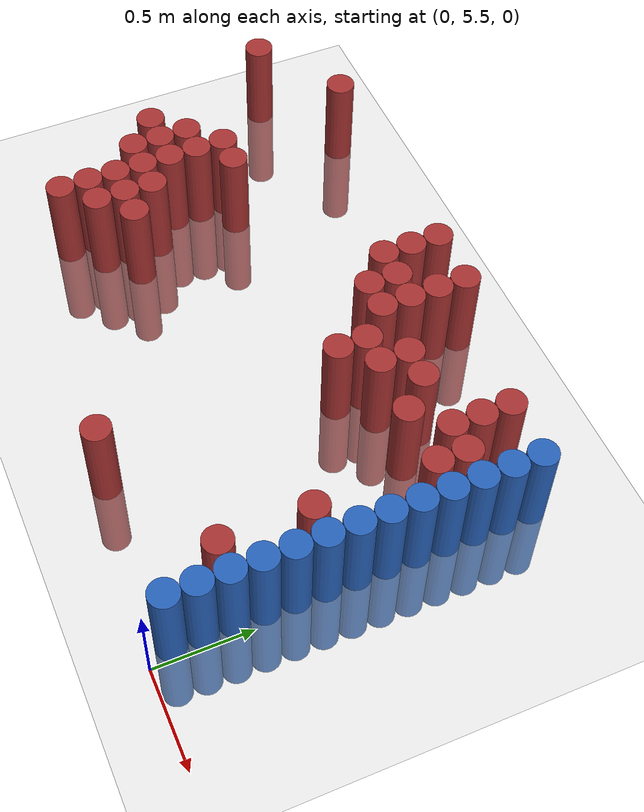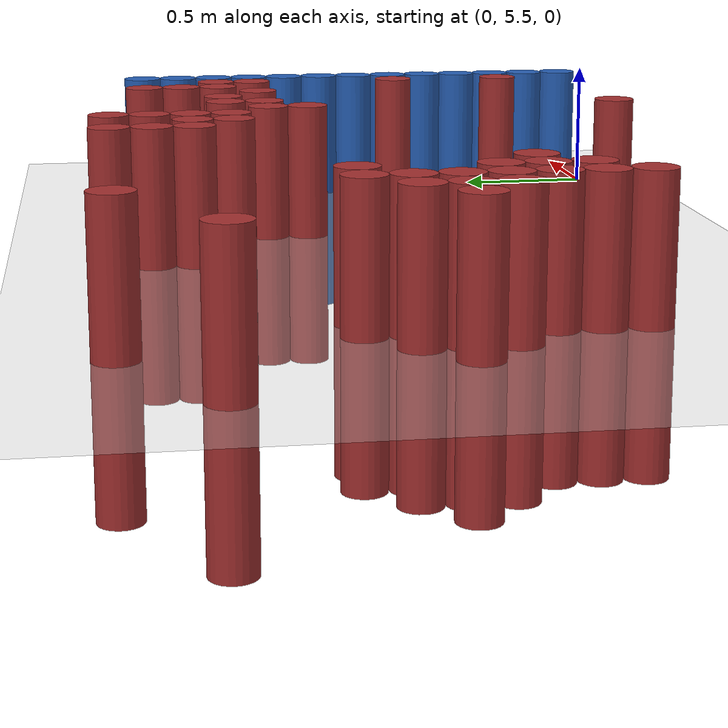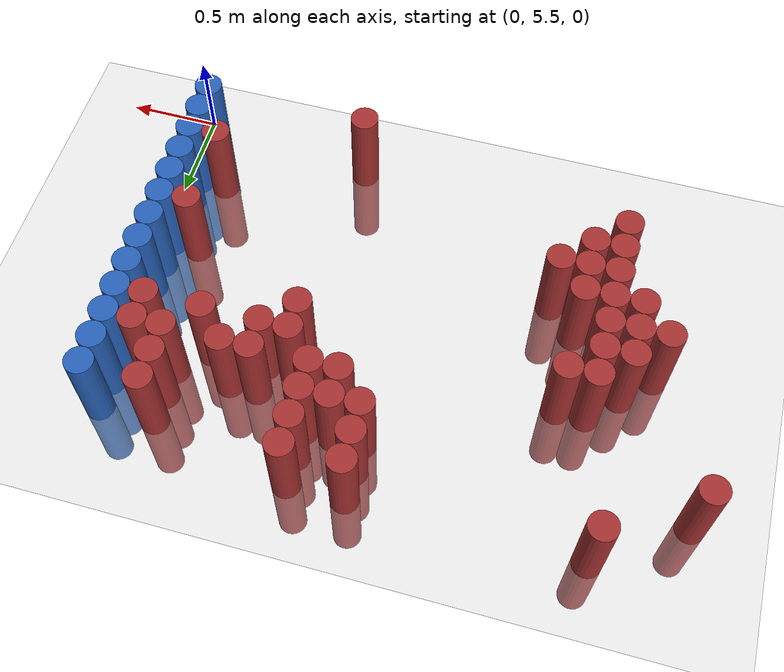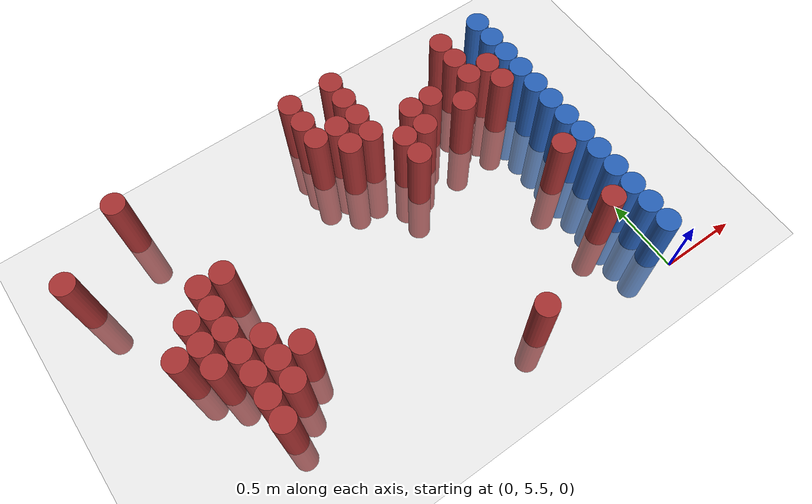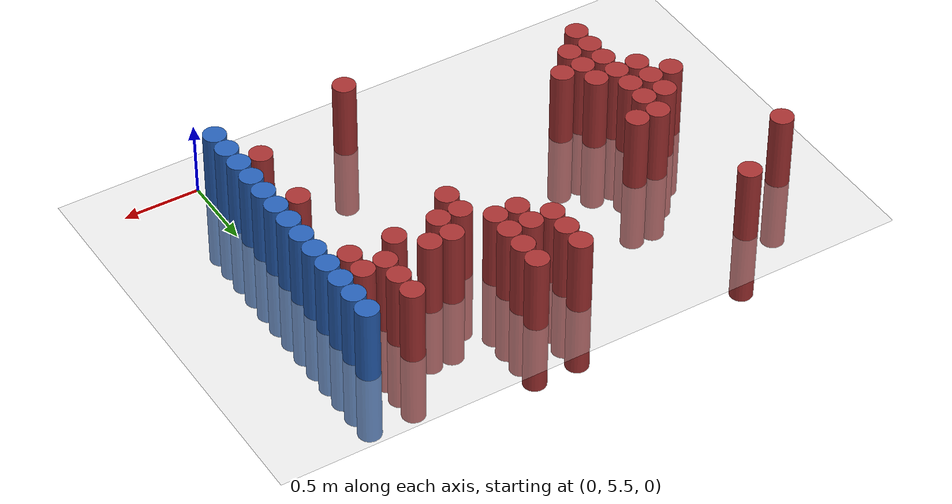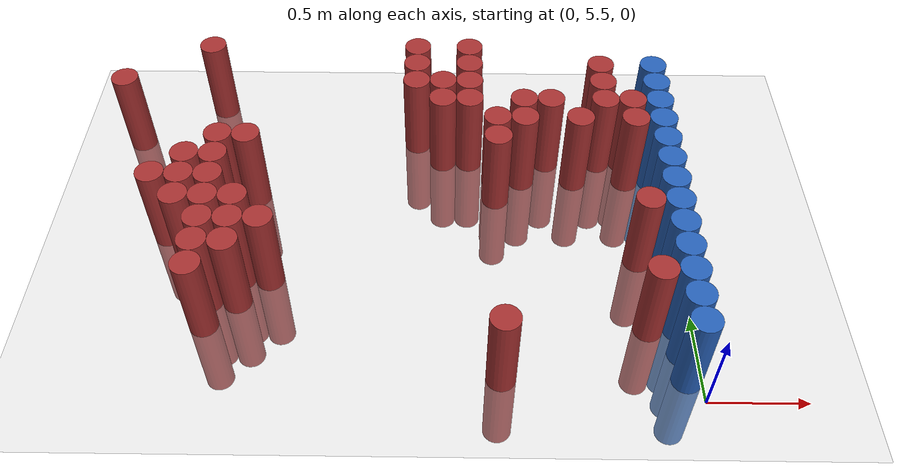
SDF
<sdf version="1.6">
 <world name="default">
  <model name="ground_plane">
   <static>1</static>
   <link name="link">
    <collision name="collision">
     <geometry><plane><normal>0 0 1</normal><size>100 100</size></plane></geometry>
     <surface><friction><ode><mu>100</mu><mu2>50</mu2></ode></friction></surface>
    </collision>
    <visual name="visual">
     <cast_shadows>0</cast_shadows>
     <geometry><plane><normal>0 0 1</normal><size>100 100</size></plane></geometry>
     <material>
      <script><uri>file://media/materials/scripts/gazebo.material</uri><name>Gazebo/Grey</name></script>
     </material>
    </visual>
   </link>
  </model>
  <model name="unit_cylinder_155">
   <static>1</static>
   <pose>-3.075000 7.275000 0.000000 0.000000 0.000000 0.000000</pose>
   <link name="link">
    <inertial>
     <mass>1</mass>
     <inertia><ixx>0.145833</ixx><ixy>0</ixy><ixz>0</ixz><iyy>0.145833</iyy><iyz>0</iyz><izz>0.125</izz></inertia>
    </inertial>
    <collision name="collision">
     <geometry><cylinder><radius>0.075000</radius><length>1</length></cylinder></geometry>
    </collision>
    <visual name="visual">
     <geometry><cylinder><radius>0.075000</radius><length>1</length></cylinder></geometry>
     <material>
      <ambient>0.648000 0.192000 0.192000 1</ambient>
      <diffuse>0.648000 0.192000 0.192000 1</diffuse>
     </material>
     <material>
      <script><name>Gazebo/Grey</name><uri>file://media/materials/scripts/gazebo.material</uri></script>
     </material>
    </visual>
   </link>
  </model>
  <model name="unit_cylinder_159">
   <static>1</static>
   <pose>-2.775000 6.525000 0.000000 0.000000 0.000000 0.000000</pose>
   <link name="link">
    <inertial>
     <mass>1</mass>
     <inertia><ixx>0.145833</ixx><ixy>0</ixy><ixz>0</ixz><iyy>0.145833</iyy><iyz>0</iyz><izz>0.125</izz></inertia>
    </inertial>
    <collision name="collision">
     <geometry><cylinder><radius>0.075000</radius><length>1</length></cylinder></geometry>
    </collision>
    <visual name="visual">
     <geometry><cylinder><radius>0.075000</radius><length>1</length></cylinder></geometry>
     <material>
      <ambient>0.648000 0.192000 0.192000 1</ambient>
      <diffuse>0.648000 0.192000 0.192000 1</diffuse>
     </material>
     <material>
      <script><name>Gazebo/Grey</name><uri>file://media/materials/scripts/gazebo.material</uri></script>
     </material>
    </visual>
   </link>
  </model>
  <model name="unit_cylinder_164">
   <static>1</static>
   <pose>-2.625000 6.375000 0.000000 0.000000 0.000000 0.000000</pose>
   <link name="link">
    <inertial>
     <mass>1</mass>
     <inertia><ixx>0.145833</ixx><ixy>0</ixy><ixz>0</ixz><iyy>0.145833</iyy><iyz>0</iyz><izz>0.125</izz></inertia>
    </inertial>
    <collision name="collision">
     <geometry><cylinder><radius>0.075000</radius><length>1</length></cylinder></geometry>
    </collision>
    <visual name="visual">
     <geometry><cylinder><radius>0.075000</radius><length>1</length></cylinder></geometry>
     <material>
      <ambient>0.648000 0.192000 0.192000 1</ambient>
      <diffuse>0.648000 0.192000 0.192000 1</diffuse>
     </material>
     <material>
      <script><name>Gazebo/Grey</name><uri>file://media/materials/scripts/gazebo.material</uri></script>
     </material>
    </visual>
   </link>
  </model>
  <model name="unit_cylinder_165">
   <static>1</static>
   <pose>-2.625000 6.525000 0.000000 0.000000 0.000000 0.000000</pose>
   <link name="link">
    <inertial>
     <mass>1</mass>
     <inertia><ixx>0.145833</ixx><ixy>0</ixy><ixz>0</ixz><iyy>0.145833</iyy><iyz>0</iyz><izz>0.125</izz></inertia>
    </inertial>
    <collision name="collision">
     <geometry><cylinder><radius>0.075000</radius><length>1</length></cylinder></geometry>
    </collision>
    <visual name="visual">
     <geometry><cylinder><radius>0.075000</radius><length>1</length></cylinder></geometry>
     <material>
      <ambient>0.648000 0.192000 0.192000 1</ambient>
      <diffuse>0.648000 0.192000 0.192000 1</diffuse>
     </material>
     <material>
      <script><name>Gazebo/Grey</name><uri>file://media/materials/scripts/gazebo.material</uri></script>
     </material>
    </visual>
   </link>
  </model>
  <model name="unit_cylinder_166">
   <static>1</static>
   <pose>-2.625000 6.675000 0.000000 0.000000 0.000000 0.000000</pose>
   <link name="link">
    <inertial>
     <mass>1</mass>
     <inertia><ixx>0.145833</ixx><ixy>0</ixy><ixz>0</ixz><iyy>0.145833</iyy><iyz>0</iyz><izz>0.125</izz></inertia>
    </inertial>
    <collision name="collision">
     <geometry><cylinder><radius>0.075000</radius><length>1</length></cylinder></geometry>
    </collision>
    <visual name="visual">
     <geometry><cylinder><radius>0.075000</radius><length>1</length></cylinder></geometry>
     <material>
      <ambient>0.648000 0.192000 0.192000 1</ambient>
      <diffuse>0.648000 0.192000 0.192000 1</diffuse>
     </material>
     <material>
      <script><name>Gazebo/Grey</name><uri>file://media/materials/scripts/gazebo.material</uri></script>
     </material>
    </visual>
   </link>
  </model>
  <model name="unit_cylinder_167">
   <static>1</static>
   <pose>-2.625000 7.575000 0.000000 0.000000 0.000000 0.000000</pose>
   <link name="link">
    <inertial>
     <mass>1</mass>
     <inertia><ixx>0.145833</ixx><ixy>0</ixy><ixz>0</ixz><iyy>0.145833</iyy><iyz>0</iyz><izz>0.125</izz></inertia>
    </inertial>
    <collision name="collision">
     <geometry><cylinder><radius>0.075000</radius><length>1</length></cylinder></geometry>
    </collision>
    <visual name="visual">
     <geometry><cylinder><radius>0.075000</radius><length>1</length></cylinder></geometry>
     <material>
      <ambient>0.648000 0.192000 0.192000 1</ambient>
      <diffuse>0.648000 0.192000 0.192000 1</diffuse>
     </material>
     <material>
      <script><name>Gazebo/Grey</name><uri>file://media/materials/scripts/gazebo.material</uri></script>
     </material>
    </visual>
   </link>
  </model>
  <model name="unit_cylinder_170">
   <static>1</static>
   <pose>-2.475000 5.925000 0.000000 0.000000 0.000000 0.000000</pose>
   <link name="link">
    <inertial>
     <mass>1</mass>
     <inertia><ixx>0.145833</ixx><ixy>0</ixy><ixz>0</ixz><iyy>0.145833</iyy><iyz>0</iyz><izz>0.125</izz></inertia>
    </inertial>
    <collision name="collision">
     <geometry><cylinder><radius>0.075000</radius><length>1</length></cylinder></geometry>
    </collision>
    <visual name="visual">
     <geometry><cylinder><radius>0.075000</radius><length>1</length></cylinder></geometry>
     <material>
      <ambient>0.648000 0.192000 0.192000 1</ambient>
      <diffuse>0.648000 0.192000 0.192000 1</diffuse>
     </material>
     <material>
      <script><name>Gazebo/Grey</name><uri>file://media/materials/scripts/gazebo.material</uri></script>
     </material>
    </visual>
   </link>
  </model>
  <model name="unit_cylinder_171">
   <static>1</static>
   <pose>-2.475000 6.075000 0.000000 0.000000 0.000000 0.000000</pose>
   <link name="link">
    <inertial>
     <mass>1</mass>
     <inertia><ixx>0.145833</ixx><ixy>0</ixy><ixz>0</ixz><iyy>0.145833</iyy><iyz>0</iyz><izz>0.125</izz></inertia>
    </inertial>
    <collision name="collision">
     <geometry><cylinder><radius>0.075000</radius><length>1</length></cylinder></geometry>
    </collision>
    <visual name="visual">
     <geometry><cylinder><radius>0.075000</radius><length>1</length></cylinder></geometry>
     <material>
      <ambient>0.648000 0.192000 0.192000 1</ambient>
      <diffuse>0.648000 0.192000 0.192000 1</diffuse>
     </material>
     <material>
      <script><name>Gazebo/Grey</name><uri>file://media/materials/scripts/gazebo.material</uri></script>
     </material>
    </visual>
   </link>
  </model>
  <model name="unit_cylinder_172">
   <static>1</static>
   <pose>-2.475000 6.225000 0.000000 0.000000 0.000000 0.000000</pose>
   <link name="link">
    <inertial>
     <mass>1</mass>
     <inertia><ixx>0.145833</ixx><ixy>0</ixy><ixz>0</ixz><iyy>0.145833</iyy><iyz>0</iyz><izz>0.125</izz></inertia>
    </inertial>
    <collision name="collision">
     <geometry><cylinder><radius>0.075000</radius><length>1</length></cylinder></geometry>
    </collision>
    <visual name="visual">
     <geometry><cylinder><radius>0.075000</radius><length>1</length></cylinder></geometry>
     <material>
      <ambient>0.648000 0.192000 0.192000 1</ambient>
      <diffuse>0.648000 0.192000 0.192000 1</diffuse>
     </material>
     <material>
      <script><name>Gazebo/Grey</name><uri>file://media/materials/scripts/gazebo.material</uri></script>
     </material>
    </visual>
   </link>
  </model>
  <model name="unit_cylinder_173">
   <static>1</static>
   <pose>-2.475000 6.375000 0.000000 0.000000 0.000000 0.000000</pose>
   <link name="link">
    <inertial>
     <mass>1</mass>
     <inertia><ixx>0.145833</ixx><ixy>0</ixy><ixz>0</ixz><iyy>0.145833</iyy><iyz>0</iyz><izz>0.125</izz></inertia>
    </inertial>
    <collision name="collision">
     <geometry><cylinder><radius>0.075000</radius><length>1</length></cylinder></geometry>
    </collision>
    <visual name="visual">
     <geometry><cylinder><radius>0.075000</radius><length>1</length></cylinder></geometry>
     <material>
      <ambient>0.648000 0.192000 0.192000 1</ambient>
      <diffuse>0.648000 0.192000 0.192000 1</diffuse>
     </material>
     <material>
      <script><name>Gazebo/Grey</name><uri>file://media/materials/scripts/gazebo.material</uri></script>
     </material>
    </visual>
   </link>
  </model>
  <model name="unit_cylinder_174">
   <static>1</static>
   <pose>-2.475000 6.525000 0.000000 0.000000 0.000000 0.000000</pose>
   <link name="link">
    <inertial>
     <mass>1</mass>
     <inertia><ixx>0.145833</ixx><ixy>0</ixy><ixz>0</ixz><iyy>0.145833</iyy><iyz>0</iyz><izz>0.125</izz></inertia>
    </inertial>
    <collision name="collision">
     <geometry><cylinder><radius>0.075000</radius><length>1</length></cylinder></geometry>
    </collision>
    <visual name="visual">
     <geometry><cylinder><radius>0.075000</radius><length>1</length></cylinder></geometry>
     <material>
      <ambient>0.648000 0.192000 0.192000 1</ambient>
      <diffuse>0.648000 0.192000 0.192000 1</diffuse>
     </material>
     <material>
      <script><name>Gazebo/Grey</name><uri>file://media/materials/scripts/gazebo.material</uri></script>
     </material>
    </visual>
   </link>
  </model>
  <model name="unit_cylinder_175">
   <static>1</static>
   <pose>-2.475000 6.675000 0.000000 0.000000 0.000000 0.000000</pose>
   <link name="link">
    <inertial>
     <mass>1</mass>
     <inertia><ixx>0.145833</ixx><ixy>0</ixy><ixz>0</ixz><iyy>0.145833</iyy><iyz>0</iyz><izz>0.125</izz></inertia>
    </inertial>
    <collision name="collision">
     <geometry><cylinder><radius>0.075000</radius><length>1</length></cylinder></geometry>
    </collision>
    <visual name="visual">
     <geometry><cylinder><radius>0.075000</radius><length>1</length></cylinder></geometry>
     <material>
      <ambient>0.648000 0.192000 0.192000 1</ambient>
      <diffuse>0.648000 0.192000 0.192000 1</diffuse>
     </material>
     <material>
      <script><name>Gazebo/Grey</name><uri>file://media/materials/scripts/gazebo.material</uri></script>
     </material>
    </visual>
   </link>
  </model>
  <model name="unit_cylinder_176">
   <static>1</static>
   <pose>-2.475000 6.825000 0.000000 0.000000 0.000000 0.000000</pose>
   <link name="link">
    <inertial>
     <mass>1</mass>
     <inertia><ixx>0.145833</ixx><ixy>0</ixy><ixz>0</ixz><iyy>0.145833</iyy><iyz>0</iyz><izz>0.125</izz></inertia>
    </inertial>
    <collision name="collision">
     <geometry><cylinder><radius>0.075000</radius><length>1</length></cylinder></geometry>
    </collision>
    <visual name="visual">
     <geometry><cylinder><radius>0.075000</radius><length>1</length></cylinder></geometry>
     <material>
      <ambient>0.648000 0.192000 0.192000 1</ambient>
      <diffuse>0.648000 0.192000 0.192000 1</diffuse>
     </material>
     <material>
      <script><name>Gazebo/Grey</name><uri>file://media/materials/scripts/gazebo.material</uri></script>
     </material>
    </visual>
   </link>
  </model>
  <model name="unit_cylinder_177">
   <static>1</static>
   <pose>-2.325000 6.075000 0.000000 0.000000 0.000000 0.000000</pose>
   <link name="link">
    <inertial>
     <mass>1</mass>
     <inertia><ixx>0.145833</ixx><ixy>0</ixy><ixz>0</ixz><iyy>0.145833</iyy><iyz>0</iyz><izz>0.125</izz></inertia>
    </inertial>
    <collision name="collision">
     <geometry><cylinder><radius>0.075000</radius><length>1</length></cylinder></geometry>
    </collision>
    <visual name="visual">
     <geometry><cylinder><radius>0.075000</radius><length>1</length></cylinder></geometry>
     <material>
      <ambient>0.648000 0.192000 0.192000 1</ambient>
      <diffuse>0.648000 0.192000 0.192000 1</diffuse>
     </material>
     <material>
      <script><name>Gazebo/Grey</name><uri>file://media/materials/scripts/gazebo.material</uri></script>
     </material>
    </visual>
   </link>
  </model>
  <model name="unit_cylinder_178">
   <static>1</static>
   <pose>-2.325000 6.225000 0.000000 0.000000 0.000000 0.000000</pose>
   <link name="link">
    <inertial>
     <mass>1</mass>
     <inertia><ixx>0.145833</ixx><ixy>0</ixy><ixz>0</ixz><iyy>0.145833</iyy><iyz>0</iyz><izz>0.125</izz></inertia>
    </inertial>
    <collision name="collision">
     <geometry><cylinder><radius>0.075000</radius><length>1</length></cylinder></geometry>
    </collision>
    <visual name="visual">
     <geometry><cylinder><radius>0.075000</radius><length>1</length></cylinder></geometry>
     <material>
      <ambient>0.648000 0.192000 0.192000 1</ambient>
      <diffuse>0.648000 0.192000 0.192000 1</diffuse>
     </material>
     <material>
      <script><name>Gazebo/Grey</name><uri>file://media/materials/scripts/gazebo.material</uri></script>
     </material>
    </visual>
   </link>
  </model>
  <model name="unit_cylinder_179">
   <static>1</static>
   <pose>-2.325000 6.375000 0.000000 0.000000 0.000000 0.000000</pose>
   <link name="link">
    <inertial>
     <mass>1</mass>
     <inertia><ixx>0.145833</ixx><ixy>0</ixy><ixz>0</ixz><iyy>0.145833</iyy><iyz>0</iyz><izz>0.125</izz></inertia>
    </inertial>
    <collision name="collision">
     <geometry><cylinder><radius>0.075000</radius><length>1</length></cylinder></geometry>
    </collision>
    <visual name="visual">
     <geometry><cylinder><radius>0.075000</radius><length>1</length></cylinder></geometry>
     <material>
      <ambient>0.648000 0.192000 0.192000 1</ambient>
      <diffuse>0.648000 0.192000 0.192000 1</diffuse>
     </material>
     <material>
      <script><name>Gazebo/Grey</name><uri>file://media/materials/scripts/gazebo.material</uri></script>
     </material>
    </visual>
   </link>
  </model>
  <model name="unit_cylinder_180">
   <static>1</static>
   <pose>-2.325000 6.825000 0.000000 0.000000 0.000000 0.000000</pose>
   <link name="link">
    <inertial>
     <mass>1</mass>
     <inertia><ixx>0.145833</ixx><ixy>0</ixy><ixz>0</ixz><iyy>0.145833</iyy><iyz>0</iyz><izz>0.125</izz></inertia>
    </inertial>
    <collision name="collision">
     <geometry><cylinder><radius>0.075000</radius><length>1</length></cylinder></geometry>
    </collision>
    <visual name="visual">
     <geometry><cylinder><radius>0.075000</radius><length>1</length></cylinder></geometry>
     <material>
      <ambient>0.648000 0.192000 0.192000 1</ambient>
      <diffuse>0.648000 0.192000 0.192000 1</diffuse>
     </material>
     <material>
      <script><name>Gazebo/Grey</name><uri>file://media/materials/scripts/gazebo.material</uri></script>
     </material>
    </visual>
   </link>
  </model>
  <model name="unit_cylinder_181">
   <static>1</static>
   <pose>-2.175000 6.225000 0.000000 0.000000 0.000000 0.000000</pose>
   <link name="link">
    <inertial>
     <mass>1</mass>
     <inertia><ixx>0.145833</ixx><ixy>0</ixy><ixz>0</ixz><iyy>0.145833</iyy><iyz>0</iyz><izz>0.125</izz></inertia>
    </inertial>
    <collision name="collision">
     <geometry><cylinder><radius>0.075000</radius><length>1</length></cylinder></geometry>
    </collision>
    <visual name="visual">
     <geometry><cylinder><radius>0.075000</radius><length>1</length></cylinder></geometry>
     <material>
      <ambient>0.648000 0.192000 0.192000 1</ambient>
      <diffuse>0.648000 0.192000 0.192000 1</diffuse>
     </material>
     <material>
      <script><name>Gazebo/Grey</name><uri>file://media/materials/scripts/gazebo.material</uri></script>
     </material>
    </visual>
   </link>
  </model>
  <model name="unit_cylinder_182">
   <static>1</static>
   <pose>-1.425000 7.275000 0.000000 0.000000 0.000000 0.000000</pose>
   <link name="link">
    <inertial>
     <mass>1</mass>
     <inertia><ixx>0.145833</ixx><ixy>0</ixy><ixz>0</ixz><iyy>0.145833</iyy><iyz>0</iyz><izz>0.125</izz></inertia>
    </inertial>
    <collision name="collision">
     <geometry><cylinder><radius>0.075000</radius><length>1</length></cylinder></geometry>
    </collision>
    <visual name="visual">
     <geometry><cylinder><radius>0.075000</radius><length>1</length></cylinder></geometry>
     <material>
      <ambient>0.648000 0.192000 0.192000 1</ambient>
      <diffuse>0.648000 0.192000 0.192000 1</diffuse>
     </material>
     <material>
      <script><name>Gazebo/Grey</name><uri>file://media/materials/scripts/gazebo.material</uri></script>
     </material>
    </visual>
   </link>
  </model>
  <model name="unit_cylinder_183">
   <static>1</static>
   <pose>-1.425000 7.425000 0.000000 0.000000 0.000000 0.000000</pose>
   <link name="link">
    <inertial>
     <mass>1</mass>
     <inertia><ixx>0.145833</ixx><ixy>0</ixy><ixz>0</ixz><iyy>0.145833</iyy><iyz>0</iyz><izz>0.125</izz></inertia>
    </inertial>
    <collision name="collision">
     <geometry><cylinder><radius>0.075000</radius><length>1</length></cylinder></geometry>
    </collision>
    <visual name="visual">
     <geometry><cylinder><radius>0.075000</radius><length>1</length></cylinder></geometry>
     <material>
      <ambient>0.648000 0.192000 0.192000 1</ambient>
      <diffuse>0.648000 0.192000 0.192000 1</diffuse>
     </material>
     <material>
      <script><name>Gazebo/Grey</name><uri>file://media/materials/scripts/gazebo.material</uri></script>
     </material>
    </visual>
   </link>
  </model>
  <model name="unit_cylinder_184">
   <static>1</static>
   <pose>-1.425000 7.575000 0.000000 0.000000 0.000000 0.000000</pose>
   <link name="link">
    <inertial>
     <mass>1</mass>
     <inertia><ixx>0.145833</ixx><ixy>0</ixy><ixz>0</ixz><iyy>0.145833</iyy><iyz>0</iyz><izz>0.125</izz></inertia>
    </inertial>
    <collision name="collision">
     <geometry><cylinder><radius>0.075000</radius><length>1</length></cylinder></geometry>
    </collision>
    <visual name="visual">
     <geometry><cylinder><radius>0.075000</radius><length>1</length></cylinder></geometry>
     <material>
      <ambient>0.648000 0.192000 0.192000 1</ambient>
      <diffuse>0.648000 0.192000 0.192000 1</diffuse>
     </material>
     <material>
      <script><name>Gazebo/Grey</name><uri>file://media/materials/scripts/gazebo.material</uri></script>
     </material>
    </visual>
   </link>
  </model>
  <model name="unit_cylinder_193">
   <static>1</static>
   <pose>-1.275000 7.125000 0.000000 0.000000 0.000000 0.000000</pose>
   <link name="link">
    <inertial>
     <mass>1</mass>
     <inertia><ixx>0.145833</ixx><ixy>0</ixy><ixz>0</ixz><iyy>0.145833</iyy><iyz>0</iyz><izz>0.125</izz></inertia>
    </inertial>
    <collision name="collision">
     <geometry><cylinder><radius>0.075000</radius><length>1</length></cylinder></geometry>
    </collision>
    <visual name="visual">
     <geometry><cylinder><radius>0.075000</radius><length>1</length></cylinder></geometry>
     <material>
      <ambient>0.648000 0.192000 0.192000 1</ambient>
      <diffuse>0.648000 0.192000 0.192000 1</diffuse>
     </material>
     <material>
      <script><name>Gazebo/Grey</name><uri>file://media/materials/scripts/gazebo.material</uri></script>
     </material>
    </visual>
   </link>
  </model>
  <model name="unit_cylinder_194">
   <static>1</static>
   <pose>-1.275000 7.275000 0.000000 0.000000 0.000000 0.000000</pose>
   <link name="link">
    <inertial>
     <mass>1</mass>
     <inertia><ixx>0.145833</ixx><ixy>0</ixy><ixz>0</ixz><iyy>0.145833</iyy><iyz>0</iyz><izz>0.125</izz></inertia>
    </inertial>
    <collision name="collision">
     <geometry><cylinder><radius>0.075000</radius><length>1</length></cylinder></geometry>
    </collision>
    <visual name="visual">
     <geometry><cylinder><radius>0.075000</radius><length>1</length></cylinder></geometry>
     <material>
      <ambient>0.648000 0.192000 0.192000 1</ambient>
      <diffuse>0.648000 0.192000 0.192000 1</diffuse>
     </material>
     <material>
      <script><name>Gazebo/Grey</name><uri>file://media/materials/scripts/gazebo.material</uri></script>
     </material>
    </visual>
   </link>
  </model>
  <model name="unit_cylinder_202">
   <static>1</static>
   <pose>-1.125000 7.125000 0.000000 0.000000 0.000000 0.000000</pose>
   <link name="link">
    <inertial>
     <mass>1</mass>
     <inertia><ixx>0.145833</ixx><ixy>0</ixy><ixz>0</ixz><iyy>0.145833</iyy><iyz>0</iyz><izz>0.125</izz></inertia>
    </inertial>
    <collision name="collision">
     <geometry><cylinder><radius>0.075000</radius><length>1</length></cylinder></geometry>
    </collision>
    <visual name="visual">
     <geometry><cylinder><radius>0.075000</radius><length>1</length></cylinder></geometry>
     <material>
      <ambient>0.648000 0.192000 0.192000 1</ambient>
      <diffuse>0.648000 0.192000 0.192000 1</diffuse>
     </material>
     <material>
      <script><name>Gazebo/Grey</name><uri>file://media/materials/scripts/gazebo.material</uri></script>
     </material>
    </visual>
   </link>
  </model>
  <model name="unit_cylinder_203">
   <static>1</static>
   <pose>-1.125000 7.275000 0.000000 0.000000 0.000000 0.000000</pose>
   <link name="link">
    <inertial>
     <mass>1</mass>
     <inertia><ixx>0.145833</ixx><ixy>0</ixy><ixz>0</ixz><iyy>0.145833</iyy><iyz>0</iyz><izz>0.125</izz></inertia>
    </inertial>
    <collision name="collision">
     <geometry><cylinder><radius>0.075000</radius><length>1</length></cylinder></geometry>
    </collision>
    <visual name="visual">
     <geometry><cylinder><radius>0.075000</radius><length>1</length></cylinder></geometry>
     <material>
      <ambient>0.648000 0.192000 0.192000 1</ambient>
      <diffuse>0.648000 0.192000 0.192000 1</diffuse>
     </material>
     <material>
      <script><name>Gazebo/Grey</name><uri>file://media/materials/scripts/gazebo.material</uri></script>
     </material>
    </visual>
   </link>
  </model>
  <model name="unit_cylinder_204">
   <static>1</static>
   <pose>-1.125000 7.425000 0.000000 0.000000 0.000000 0.000000</pose>
   <link name="link">
    <inertial>
     <mass>1</mass>
     <inertia><ixx>0.145833</ixx><ixy>0</ixy><ixz>0</ixz><iyy>0.145833</iyy><iyz>0</iyz><izz>0.125</izz></inertia>
    </inertial>
    <collision name="collision">
     <geometry><cylinder><radius>0.075000</radius><length>1</length></cylinder></geometry>
    </collision>
    <visual name="visual">
     <geometry><cylinder><radius>0.075000</radius><length>1</length></cylinder></geometry>
     <material>
      <ambient>0.648000 0.192000 0.192000 1</ambient>
      <diffuse>0.648000 0.192000 0.192000 1</diffuse>
     </material>
     <material>
      <script><name>Gazebo/Grey</name><uri>file://media/materials/scripts/gazebo.material</uri></script>
     </material>
    </visual>
   </link>
  </model>
  <model name="unit_cylinder_205">
   <static>1</static>
   <pose>-1.125000 7.575000 0.000000 0.000000 0.000000 0.000000</pose>
   <link name="link">
    <inertial>
     <mass>1</mass>
     <inertia><ixx>0.145833</ixx><ixy>0</ixy><ixz>0</ixz><iyy>0.145833</iyy><iyz>0</iyz><izz>0.125</izz></inertia>
    </inertial>
    <collision name="collision">
     <geometry><cylinder><radius>0.075000</radius><length>1</length></cylinder></geometry>
    </collision>
    <visual name="visual">
     <geometry><cylinder><radius>0.075000</radius><length>1</length></cylinder></geometry>
     <material>
      <ambient>0.648000 0.192000 0.192000 1</ambient>
      <diffuse>0.648000 0.192000 0.192000 1</diffuse>
     </material>
     <material>
      <script><name>Gazebo/Grey</name><uri>file://media/materials/scripts/gazebo.material</uri></script>
     </material>
    </visual>
   </link>
  </model>
  <model name="unit_cylinder_212">
   <static>1</static>
   <pose>-0.975000 5.625000 0.000000 0.000000 0.000000 0.000000</pose>
   <link name="link">
    <inertial>
     <mass>1</mass>
     <inertia><ixx>0.145833</ixx><ixy>0</ixy><ixz>0</ixz><iyy>0.145833</iyy><iyz>0</iyz><izz>0.125</izz></inertia>
    </inertial>
    <collision name="collision">
     <geometry><cylinder><radius>0.075000</radius><length>1</length></cylinder></geometry>
    </collision>
    <visual name="visual">
     <geometry><cylinder><radius>0.075000</radius><length>1</length></cylinder></geometry>
     <material>
      <ambient>0.648000 0.192000 0.192000 1</ambient>
      <diffuse>0.648000 0.192000 0.192000 1</diffuse>
     </material>
     <material>
      <script><name>Gazebo/Grey</name><uri>file://media/materials/scripts/gazebo.material</uri></script>
     </material>
    </visual>
   </link>
  </model>
  <model name="unit_cylinder_213">
   <static>1</static>
   <pose>-0.975000 6.825000 0.000000 0.000000 0.000000 0.000000</pose>
   <link name="link">
    <inertial>
     <mass>1</mass>
     <inertia><ixx>0.145833</ixx><ixy>0</ixy><ixz>0</ixz><iyy>0.145833</iyy><iyz>0</iyz><izz>0.125</izz></inertia>
    </inertial>
    <collision name="collision">
     <geometry><cylinder><radius>0.075000</radius><length>1</length></cylinder></geometry>
    </collision>
    <visual name="visual">
     <geometry><cylinder><radius>0.075000</radius><length>1</length></cylinder></geometry>
     <material>
      <ambient>0.648000 0.192000 0.192000 1</ambient>
      <diffuse>0.648000 0.192000 0.192000 1</diffuse>
     </material>
     <material>
      <script><name>Gazebo/Grey</name><uri>file://media/materials/scripts/gazebo.material</uri></script>
     </material>
    </visual>
   </link>
  </model>
  <model name="unit_cylinder_214">
   <static>1</static>
   <pose>-0.975000 6.975000 0.000000 0.000000 0.000000 0.000000</pose>
   <link name="link">
    <inertial>
     <mass>1</mass>
     <inertia><ixx>0.145833</ixx><ixy>0</ixy><ixz>0</ixz><iyy>0.145833</iyy><iyz>0</iyz><izz>0.125</izz></inertia>
    </inertial>
    <collision name="collision">
     <geometry><cylinder><radius>0.075000</radius><length>1</length></cylinder></geometry>
    </collision>
    <visual name="visual">
     <geometry><cylinder><radius>0.075000</radius><length>1</length></cylinder></geometry>
     <material>
      <ambient>0.648000 0.192000 0.192000 1</ambient>
      <diffuse>0.648000 0.192000 0.192000 1</diffuse>
     </material>
     <material>
      <script><name>Gazebo/Grey</name><uri>file://media/materials/scripts/gazebo.material</uri></script>
     </material>
    </visual>
   </link>
  </model>
  <model name="unit_cylinder_219">
   <static>1</static>
   <pose>-0.825000 6.975000 0.000000 0.000000 0.000000 0.000000</pose>
   <link name="link">
    <inertial>
     <mass>1</mass>
     <inertia><ixx>0.145833</ixx><ixy>0</ixy><ixz>0</ixz><iyy>0.145833</iyy><iyz>0</iyz><izz>0.125</izz></inertia>
    </inertial>
    <collision name="collision">
     <geometry><cylinder><radius>0.075000</radius><length>1</length></cylinder></geometry>
    </collision>
    <visual name="visual">
     <geometry><cylinder><radius>0.075000</radius><length>1</length></cylinder></geometry>
     <material>
      <ambient>0.648000 0.192000 0.192000 1</ambient>
      <diffuse>0.648000 0.192000 0.192000 1</diffuse>
     </material>
     <material>
      <script><name>Gazebo/Grey</name><uri>file://media/materials/scripts/gazebo.material</uri></script>
     </material>
    </visual>
   </link>
  </model>
  <model name="unit_cylinder_220">
   <static>1</static>
   <pose>-0.825000 7.125000 0.000000 0.000000 0.000000 0.000000</pose>
   <link name="link">
    <inertial>
     <mass>1</mass>
     <inertia><ixx>0.145833</ixx><ixy>0</ixy><ixz>0</ixz><iyy>0.145833</iyy><iyz>0</iyz><izz>0.125</izz></inertia>
    </inertial>
    <collision name="collision">
     <geometry><cylinder><radius>0.075000</radius><length>1</length></cylinder></geometry>
    </collision>
    <visual name="visual">
     <geometry><cylinder><radius>0.075000</radius><length>1</length></cylinder></geometry>
     <material>
      <ambient>0.648000 0.192000 0.192000 1</ambient>
      <diffuse>0.648000 0.192000 0.192000 1</diffuse>
     </material>
     <material>
      <script><name>Gazebo/Grey</name><uri>file://media/materials/scripts/gazebo.material</uri></script>
     </material>
    </visual>
   </link>
  </model>
  <model name="unit_cylinder_223">
   <static>1</static>
   <pose>-0.675000 7.125000 0.000000 0.000000 0.000000 0.000000</pose>
   <link name="link">
    <inertial>
     <mass>1</mass>
     <inertia><ixx>0.145833</ixx><ixy>0</ixy><ixz>0</ixz><iyy>0.145833</iyy><iyz>0</iyz><izz>0.125</izz></inertia>
    </inertial>
    <collision name="collision">
     <geometry><cylinder><radius>0.075000</radius><length>1</length></cylinder></geometry>
    </collision>
    <visual name="visual">
     <geometry><cylinder><radius>0.075000</radius><length>1</length></cylinder></geometry>
     <material>
      <ambient>0.648000 0.192000 0.192000 1</ambient>
      <diffuse>0.648000 0.192000 0.192000 1</diffuse>
     </material>
     <material>
      <script><name>Gazebo/Grey</name><uri>file://media/materials/scripts/gazebo.material</uri></script>
     </material>
    </visual>
   </link>
  </model>
  <model name="unit_cylinder_224">
   <static>1</static>
   <pose>-0.525000 6.975000 0.000000 0.000000 0.000000 0.000000</pose>
   <link name="link">
    <inertial>
     <mass>1</mass>
     <inertia><ixx>0.145833</ixx><ixy>0</ixy><ixz>0</ixz><iyy>0.145833</iyy><iyz>0</iyz><izz>0.125</izz></inertia>
    </inertial>
    <collision name="collision">
     <geometry><cylinder><radius>0.075000</radius><length>1</length></cylinder></geometry>
    </collision>
    <visual name="visual">
     <geometry><cylinder><radius>0.075000</radius><length>1</length></cylinder></geometry>
     <material>
      <ambient>0.648000 0.192000 0.192000 1</ambient>
      <diffuse>0.648000 0.192000 0.192000 1</diffuse>
     </material>
     <material>
      <script><name>Gazebo/Grey</name><uri>file://media/materials/scripts/gazebo.material</uri></script>
     </material>
    </visual>
   </link>
  </model>
  <model name="unit_cylinder_226">
   <static>1</static>
   <pose>-0.375000 7.125000 0.000000 0.000000 0.000000 0.000000</pose>
   <link name="link">
    <inertial>
     <mass>1</mass>
     <inertia><ixx>0.145833</ixx><ixy>0</ixy><ixz>0</ixz><iyy>0.145833</iyy><iyz>0</iyz><izz>0.125</izz></inertia>
    </inertial>
    <collision name="collision">
     <geometry><cylinder><radius>0.075000</radius><length>1</length></cylinder></geometry>
    </collision>
    <visual name="visual">
     <geometry><cylinder><radius>0.075000</radius><length>1</length></cylinder></geometry>
     <material>
      <ambient>0.648000 0.192000 0.192000 1</ambient>
      <diffuse>0.648000 0.192000 0.192000 1</diffuse>
     </material>
     <material>
      <script><name>Gazebo/Grey</name><uri>file://media/materials/scripts/gazebo.material</uri></script>
     </material>
    </visual>
   </link>
  </model>
  <model name="unit_cylinder_227">
   <static>1</static>
   <pose>-0.375000 7.275000 0.000000 0.000000 0.000000 0.000000</pose>
   <link name="link">
    <inertial>
     <mass>1</mass>
     <inertia><ixx>0.145833</ixx><ixy>0</ixy><ixz>0</ixz><iyy>0.145833</iyy><iyz>0</iyz><izz>0.125</izz></inertia>
    </inertial>
    <collision name="collision">
     <geometry><cylinder><radius>0.075000</radius><length>1</length></cylinder></geometry>
    </collision>
    <visual name="visual">
     <geometry><cylinder><radius>0.075000</radius><length>1</length></cylinder></geometry>
     <material>
      <ambient>0.648000 0.192000 0.192000 1</ambient>
      <diffuse>0.648000 0.192000 0.192000 1</diffuse>
     </material>
     <material>
      <script><name>Gazebo/Grey</name><uri>file://media/materials/scripts/gazebo.material</uri></script>
     </material>
    </visual>
   </link>
  </model>
  <model name="unit_cylinder_228">
   <static>1</static>
   <pose>-0.375000 7.425000 0.000000 0.000000 0.000000 0.000000</pose>
   <link name="link">
    <inertial>
     <mass>1</mass>
     <inertia><ixx>0.145833</ixx><ixy>0</ixy><ixz>0</ixz><iyy>0.145833</iyy><iyz>0</iyz><izz>0.125</izz></inertia>
    </inertial>
    <collision name="collision">
     <geometry><cylinder><radius>0.075000</radius><length>1</length></cylinder></geometry>
    </collision>
    <visual name="visual">
     <geometry><cylinder><radius>0.075000</radius><length>1</length></cylinder></geometry>
     <material>
      <ambient>0.648000 0.192000 0.192000 1</ambient>
      <diffuse>0.648000 0.192000 0.192000 1</diffuse>
     </material>
     <material>
      <script><name>Gazebo/Grey</name><uri>file://media/materials/scripts/gazebo.material</uri></script>
     </material>
    </visual>
   </link>
  </model>
  <model name="unit_cylinder_234">
   <static>1</static>
   <pose>-0.225000 5.925000 0.000000 0.000000 0.000000 0.000000</pose>
   <link name="link">
    <inertial>
     <mass>1</mass>
     <inertia><ixx>0.145833</ixx><ixy>0</ixy><ixz>0</ixz><iyy>0.145833</iyy><iyz>0</iyz><izz>0.125</izz></inertia>
    </inertial>
    <collision name="collision">
     <geometry><cylinder><radius>0.075000</radius><length>1</length></cylinder></geometry>
    </collision>
    <visual name="visual">
     <geometry><cylinder><radius>0.075000</radius><length>1</length></cylinder></geometry>
     <material>
      <ambient>0.648000 0.192000 0.192000 1</ambient>
      <diffuse>0.648000 0.192000 0.192000 1</diffuse>
     </material>
     <material>
      <script><name>Gazebo/Grey</name><uri>file://media/materials/scripts/gazebo.material</uri></script>
     </material>
    </visual>
   </link>
  </model>
  <model name="unit_cylinder_235">
   <static>1</static>
   <pose>-0.225000 6.375000 0.000000 0.000000 0.000000 0.000000</pose>
   <link name="link">
    <inertial>
     <mass>1</mass>
     <inertia><ixx>0.145833</ixx><ixy>0</ixy><ixz>0</ixz><iyy>0.145833</iyy><iyz>0</iyz><izz>0.125</izz></inertia>
    </inertial>
    <collision name="collision">
     <geometry><cylinder><radius>0.075000</radius><length>1</length></cylinder></geometry>
    </collision>
    <visual name="visual">
     <geometry><cylinder><radius>0.075000</radius><length>1</length></cylinder></geometry>
     <material>
      <ambient>0.648000 0.192000 0.192000 1</ambient>
      <diffuse>0.648000 0.192000 0.192000 1</diffuse>
     </material>
     <material>
      <script><name>Gazebo/Grey</name><uri>file://media/materials/scripts/gazebo.material</uri></script>
     </material>
    </visual>
   </link>
  </model>
  <model name="unit_cylinder_236">
   <static>1</static>
   <pose>-0.225000 6.975000 0.000000 0.000000 0.000000 0.000000</pose>
   <link name="link">
    <inertial>
     <mass>1</mass>
     <inertia><ixx>0.145833</ixx><ixy>0</ixy><ixz>0</ixz><iyy>0.145833</iyy><iyz>0</iyz><izz>0.125</izz></inertia>
    </inertial>
    <collision name="collision">
     <geometry><cylinder><radius>0.075000</radius><length>1</length></cylinder></geometry>
    </collision>
    <visual name="visual">
     <geometry><cylinder><radius>0.075000</radius><length>1</length></cylinder></geometry>
     <material>
      <ambient>0.648000 0.192000 0.192000 1</ambient>
      <diffuse>0.648000 0.192000 0.192000 1</diffuse>
     </material>
     <material>
      <script><name>Gazebo/Grey</name><uri>file://media/materials/scripts/gazebo.material</uri></script>
     </material>
    </visual>
   </link>
  </model>
  <model name="unit_cylinder_237">
   <static>1</static>
   <pose>-0.225000 7.125000 0.000000 0.000000 0.000000 0.000000</pose>
   <link name="link">
    <inertial>
     <mass>1</mass>
     <inertia><ixx>0.145833</ixx><ixy>0</ixy><ixz>0</ixz><iyy>0.145833</iyy><iyz>0</iyz><izz>0.125</izz></inertia>
    </inertial>
    <collision name="collision">
     <geometry><cylinder><radius>0.075000</radius><length>1</length></cylinder></geometry>
    </collision>
    <visual name="visual">
     <geometry><cylinder><radius>0.075000</radius><length>1</length></cylinder></geometry>
     <material>
      <ambient>0.648000 0.192000 0.192000 1</ambient>
      <diffuse>0.648000 0.192000 0.192000 1</diffuse>
     </material>
     <material>
      <script><name>Gazebo/Grey</name><uri>file://media/materials/scripts/gazebo.material</uri></script>
     </material>
    </visual>
   </link>
  </model>
  <model name="unit_cylinder_246">
   <static>1</static>
   <pose>-0.075000 5.625000 0.000000 0.000000 0.000000 0.000000</pose>
   <link name="link">
    <inertial>
     <mass>1</mass>
     <inertia><ixx>0.145833</ixx><ixy>0</ixy><ixz>0</ixz><iyy>0.145833</iyy><iyz>0</iyz><izz>0.125</izz></inertia>
    </inertial>
    <collision name="collision">
     <geometry><cylinder><radius>0.075000</radius><length>1</length></cylinder></geometry>
    </collision>
    <visual name="visual">
     <geometry><cylinder><radius>0.075000</radius><length>1</length></cylinder></geometry>
     <material>
      <ambient>0.152000 0.379000 0.720000 1</ambient>
      <diffuse>0.152000 0.379000 0.720000 1</diffuse>
     </material>
     <material>
      <script><name>Gazebo/Grey</name><uri>file://media/materials/scripts/gazebo.material</uri></script>
     </material>
    </visual>
   </link>
  </model>
  <model name="unit_cylinder_247">
   <static>1</static>
   <pose>-0.075000 5.775000 0.000000 0.000000 0.000000 0.000000</pose>
   <link name="link">
    <inertial>
     <mass>1</mass>
     <inertia><ixx>0.145833</ixx><ixy>0</ixy><ixz>0</ixz><iyy>0.145833</iyy><iyz>0</iyz><izz>0.125</izz></inertia>
    </inertial>
    <collision name="collision">
     <geometry><cylinder><radius>0.075000</radius><length>1</length></cylinder></geometry>
    </collision>
    <visual name="visual">
     <geometry><cylinder><radius>0.075000</radius><length>1</length></cylinder></geometry>
     <material>
      <ambient>0.152000 0.379000 0.720000 1</ambient>
      <diffuse>0.152000 0.379000 0.720000 1</diffuse>
     </material>
     <material>
      <script><name>Gazebo/Grey</name><uri>file://media/materials/scripts/gazebo.material</uri></script>
     </material>
    </visual>
   </link>
  </model>
  <model name="unit_cylinder_248">
   <static>1</static>
   <pose>-0.075000 5.925000 0.000000 0.000000 0.000000 0.000000</pose>
   <link name="link">
    <inertial>
     <mass>1</mass>
     <inertia><ixx>0.145833</ixx><ixy>0</ixy><ixz>0</ixz><iyy>0.145833</iyy><iyz>0</iyz><izz>0.125</izz></inertia>
    </inertial>
    <collision name="collision">
     <geometry><cylinder><radius>0.075000</radius><length>1</length></cylinder></geometry>
    </collision>
    <visual name="visual">
     <geometry><cylinder><radius>0.075000</radius><length>1</length></cylinder></geometry>
     <material>
      <ambient>0.152000 0.379000 0.720000 1</ambient>
      <diffuse>0.152000 0.379000 0.720000 1</diffuse>
     </material>
     <material>
      <script><name>Gazebo/Grey</name><uri>file://media/materials/scripts/gazebo.material</uri></script>
     </material>
    </visual>
   </link>
  </model>
  <model name="unit_cylinder_249">
   <static>1</static>
   <pose>-0.075000 6.075000 0.000000 0.000000 0.000000 0.000000</pose>
   <link name="link">
    <inertial>
     <mass>1</mass>
     <inertia><ixx>0.145833</ixx><ixy>0</ixy><ixz>0</ixz><iyy>0.145833</iyy><iyz>0</iyz><izz>0.125</izz></inertia>
    </inertial>
    <collision name="collision">
     <geometry><cylinder><radius>0.075000</radius><length>1</length></cylinder></geometry>
    </collision>
    <visual name="visual">
     <geometry><cylinder><radius>0.075000</radius><length>1</length></cylinder></geometry>
     <material>
      <ambient>0.152000 0.379000 0.720000 1</ambient>
      <diffuse>0.152000 0.379000 0.720000 1</diffuse>
     </material>
     <material>
      <script><name>Gazebo/Grey</name><uri>file://media/materials/scripts/gazebo.material</uri></script>
     </material>
    </visual>
   </link>
  </model>
  <model name="unit_cylinder_250">
   <static>1</static>
   <pose>-0.075000 6.225000 0.000000 0.000000 0.000000 0.000000</pose>
   <link name="link">
    <inertial>
     <mass>1</mass>
     <inertia><ixx>0.145833</ixx><ixy>0</ixy><ixz>0</ixz><iyy>0.145833</iyy><iyz>0</iyz><izz>0.125</izz></inertia>
    </inertial>
    <collision name="collision">
     <geometry><cylinder><radius>0.075000</radius><length>1</length></cylinder></geometry>
    </collision>
    <visual name="visual">
     <geometry><cylinder><radius>0.075000</radius><length>1</length></cylinder></geometry>
     <material>
      <ambient>0.152000 0.379000 0.720000 1</ambient>
      <diffuse>0.152000 0.379000 0.720000 1</diffuse>
     </material>
     <material>
      <script><name>Gazebo/Grey</name><uri>file://media/materials/scripts/gazebo.material</uri></script>
     </material>
    </visual>
   </link>
  </model>
  <model name="unit_cylinder_251">
   <static>1</static>
   <pose>-0.075000 6.375000 0.000000 0.000000 0.000000 0.000000</pose>
   <link name="link">
    <inertial>
     <mass>1</mass>
     <inertia><ixx>0.145833</ixx><ixy>0</ixy><ixz>0</ixz><iyy>0.145833</iyy><iyz>0</iyz><izz>0.125</izz></inertia>
    </inertial>
    <collision name="collision">
     <geometry><cylinder><radius>0.075000</radius><length>1</length></cylinder></geometry>
    </collision>
    <visual name="visual">
     <geometry><cylinder><radius>0.075000</radius><length>1</length></cylinder></geometry>
     <material>
      <ambient>0.152000 0.379000 0.720000 1</ambient>
      <diffuse>0.152000 0.379000 0.720000 1</diffuse>
     </material>
     <material>
      <script><name>Gazebo/Grey</name><uri>file://media/materials/scripts/gazebo.material</uri></script>
     </material>
    </visual>
   </link>
  </model>
  <model name="unit_cylinder_252">
   <static>1</static>
   <pose>-0.075000 6.525000 0.000000 0.000000 0.000000 0.000000</pose>
   <link name="link">
    <inertial>
     <mass>1</mass>
     <inertia><ixx>0.145833</ixx><ixy>0</ixy><ixz>0</ixz><iyy>0.145833</iyy><iyz>0</iyz><izz>0.125</izz></inertia>
    </inertial>
    <collision name="collision">
     <geometry><cylinder><radius>0.075000</radius><length>1</length></cylinder></geometry>
    </collision>
    <visual name="visual">
     <geometry><cylinder><radius>0.075000</radius><length>1</length></cylinder></geometry>
     <material>
      <ambient>0.152000 0.379000 0.720000 1</ambient>
      <diffuse>0.152000 0.379000 0.720000 1</diffuse>
     </material>
     <material>
      <script><name>Gazebo/Grey</name><uri>file://media/materials/scripts/gazebo.material</uri></script>
     </material>
    </visual>
   </link>
  </model>
  <model name="unit_cylinder_253">
   <static>1</static>
   <pose>-0.075000 6.675000 0.000000 0.000000 0.000000 0.000000</pose>
   <link name="link">
    <inertial>
     <mass>1</mass>
     <inertia><ixx>0.145833</ixx><ixy>0</ixy><ixz>0</ixz><iyy>0.145833</iyy><iyz>0</iyz><izz>0.125</izz></inertia>
    </inertial>
    <collision name="collision">
     <geometry><cylinder><radius>0.075000</radius><length>1</length></cylinder></geometry>
    </collision>
    <visual name="visual">
     <geometry><cylinder><radius>0.075000</radius><length>1</length></cylinder></geometry>
     <material>
      <ambient>0.152000 0.379000 0.720000 1</ambient>
      <diffuse>0.152000 0.379000 0.720000 1</diffuse>
     </material>
     <material>
      <script><name>Gazebo/Grey</name><uri>file://media/materials/scripts/gazebo.material</uri></script>
     </material>
    </visual>
   </link>
  </model>
  <model name="unit_cylinder_254">
   <static>1</static>
   <pose>-0.075000 6.825000 0.000000 0.000000 0.000000 0.000000</pose>
   <link name="link">
    <inertial>
     <mass>1</mass>
     <inertia><ixx>0.145833</ixx><ixy>0</ixy><ixz>0</ixz><iyy>0.145833</iyy><iyz>0</iyz><izz>0.125</izz></inertia>
    </inertial>
    <collision name="collision">
     <geometry><cylinder><radius>0.075000</radius><length>1</length></cylinder></geometry>
    </collision>
    <visual name="visual">
     <geometry><cylinder><radius>0.075000</radius><length>1</length></cylinder></geometry>
     <material>
      <ambient>0.152000 0.379000 0.720000 1</ambient>
      <diffuse>0.152000 0.379000 0.720000 1</diffuse>
     </material>
     <material>
      <script><name>Gazebo/Grey</name><uri>file://media/materials/scripts/gazebo.material</uri></script>
     </material>
    </visual>
   </link>
  </model>
  <model name="unit_cylinder_255">
   <static>1</static>
   <pose>-0.075000 6.975000 0.000000 0.000000 0.000000 0.000000</pose>
   <link name="link">
    <inertial>
     <mass>1</mass>
     <inertia><ixx>0.145833</ixx><ixy>0</ixy><ixz>0</ixz><iyy>0.145833</iyy><iyz>0</iyz><izz>0.125</izz></inertia>
    </inertial>
    <collision name="collision">
     <geometry><cylinder><radius>0.075000</radius><length>1</length></cylinder></geometry>
    </collision>
    <visual name="visual">
     <geometry><cylinder><radius>0.075000</radius><length>1</length></cylinder></geometry>
     <material>
      <ambient>0.152000 0.379000 0.720000 1</ambient>
      <diffuse>0.152000 0.379000 0.720000 1</diffuse>
     </material>
     <material>
      <script><name>Gazebo/Grey</name><uri>file://media/materials/scripts/gazebo.material</uri></script>
     </material>
    </visual>
   </link>
  </model>
  <model name="unit_cylinder_256">
   <static>1</static>
   <pose>-0.075000 7.125000 0.000000 0.000000 0.000000 0.000000</pose>
   <link name="link">
    <inertial>
     <mass>1</mass>
     <inertia><ixx>0.145833</ixx><ixy>0</ixy><ixz>0</ixz><iyy>0.145833</iyy><iyz>0</iyz><izz>0.125</izz></inertia>
    </inertial>
    <collision name="collision">
     <geometry><cylinder><radius>0.075000</radius><length>1</length></cylinder></geometry>
    </collision>
    <visual name="visual">
     <geometry><cylinder><radius>0.075000</radius><length>1</length></cylinder></geometry>
     <material>
      <ambient>0.152000 0.379000 0.720000 1</ambient>
      <diffuse>0.152000 0.379000 0.720000 1</diffuse>
     </material>
     <material>
      <script><name>Gazebo/Grey</name><uri>file://media/materials/scripts/gazebo.material</uri></script>
     </material>
    </visual>
   </link>
  </model>
  <model name="unit_cylinder_257">
   <static>1</static>
   <pose>-0.075000 7.275000 0.000000 0.000000 0.000000 0.000000</pose>
   <link name="link">
    <inertial>
     <mass>1</mass>
     <inertia><ixx>0.145833</ixx><ixy>0</ixy><ixz>0</ixz><iyy>0.145833</iyy><iyz>0</iyz><izz>0.125</izz></inertia>
    </inertial>
    <collision name="collision">
     <geometry><cylinder><radius>0.075000</radius><length>1</length></cylinder></geometry>
    </collision>
    <visual name="visual">
     <geometry><cylinder><radius>0.075000</radius><length>1</length></cylinder></geometry>
     <material>
      <ambient>0.152000 0.379000 0.720000 1</ambient>
      <diffuse>0.152000 0.379000 0.720000 1</diffuse>
     </material>
     <material>
      <script><name>Gazebo/Grey</name><uri>file://media/materials/scripts/gazebo.material</uri></script>
     </material>
    </visual>
   </link>
  </model>
  <model name="unit_cylinder_258">
   <static>1</static>
   <pose>-0.075000 7.425000 0.000000 0.000000 0.000000 0.000000</pose>
   <link name="link">
    <inertial>
     <mass>1</mass>
     <inertia><ixx>0.145833</ixx><ixy>0</ixy><ixz>0</ixz><iyy>0.145833</iyy><iyz>0</iyz><izz>0.125</izz></inertia>
    </inertial>
    <collision name="collision">
     <geometry><cylinder><radius>0.075000</radius><length>1</length></cylinder></geometry>
    </collision>
    <visual name="visual">
     <geometry><cylinder><radius>0.075000</radius><length>1</length></cylinder></geometry>
     <material>
      <ambient>0.152000 0.379000 0.720000 1</ambient>
      <diffuse>0.152000 0.379000 0.720000 1</diffuse>
     </material>
     <material>
      <script><name>Gazebo/Grey</name><uri>file://media/materials/scripts/gazebo.material</uri></script>
     </material>
    </visual>
   </link>
  </model>
 </world>
</sdf>
